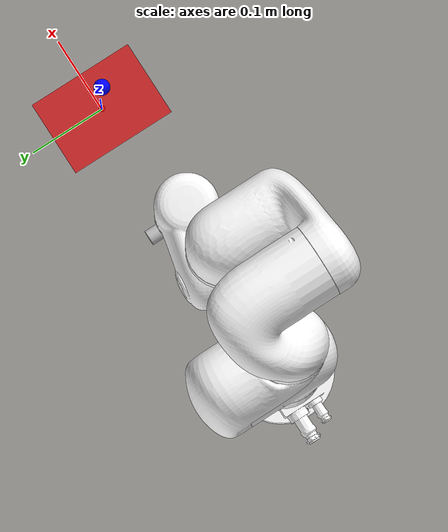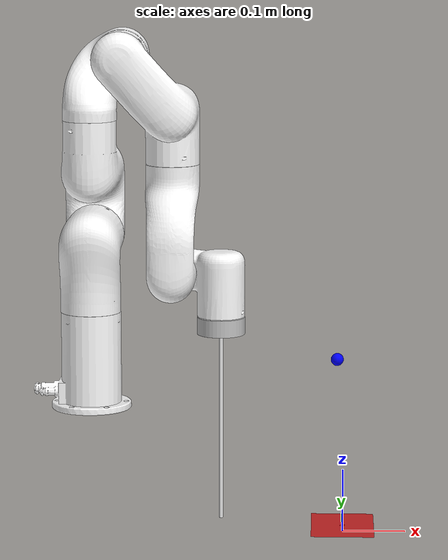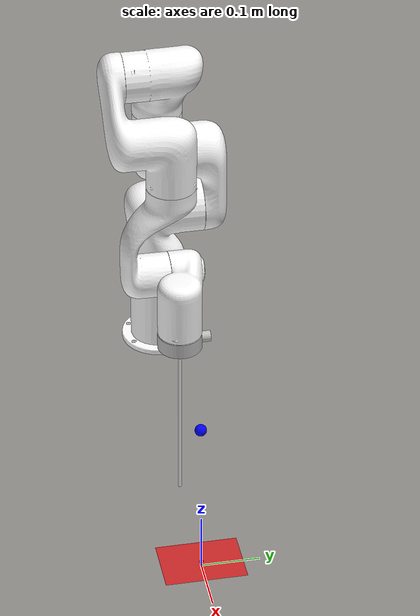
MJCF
<mujoco model="main">

  <compiler angle="radian" autolimits="true" strippath="false" />

  <include file="placenta/placenta_gen.xml"/>

  <include file="ufactory_xarm7/xarm7_tool.xml"/>

  <include file="other/floor.xml"/>
  <include file="other/ee_marker.xml"/>
  <include file="other/rcm_marker.xml"/>

</mujoco>

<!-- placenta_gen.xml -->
<mujoco model="placenta_generated">
    <asset>
        <texture name="generated" type="2d" file="placenta/assets/plac1344.png"/>
        <material name="textured_material" texture="generated"/>
    </asset>

    <worldbody>

        <body name="placenta_gen" pos="0 0 0.01" euler="0 0 -1.5708">
            <inertial pos="0 0 0" mass="0.1" diaginertia="0.0001 0.0001 0.0001"/>
            <geom name="textured_geom" type="plane"  size="0.07 0.05 0.1" material="textured_material" />
        </body>

    </worldbody>

</mujoco>

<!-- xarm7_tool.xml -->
<mujoco model="xarm7 tool">

  <option integrator="implicitfast"/>

  <asset>
    <material name="white" rgba="1 1 1 1"/>
    <material name="gray" rgba="0.753 0.753 0.753 1"/>

    <mesh file="ufactory_xarm7/assets/link_base.stl"/>
    <mesh file="ufactory_xarm7/assets/link1.stl"/>
    <mesh file="ufactory_xarm7/assets/link2.stl"/>
    <mesh file="ufactory_xarm7/assets/link3.stl"/>
    <mesh file="ufactory_xarm7/assets/link4.stl"/>
    <mesh file="ufactory_xarm7/assets/link5.stl"/>
    <mesh file="ufactory_xarm7/assets/link6.stl"/>
    <mesh file="ufactory_xarm7/assets/link7.stl"/>
    <mesh file="ufactory_xarm7/assets/end_tool.stl"/>
  </asset>

  <default>
    <default class="xarm7">
      <geom type="mesh" material="white"/>
      <joint axis="0 0 1" range="-6.28319 6.28319" frictionloss="1"/>
      <general biastype="affine" ctrlrange="-6.28319 6.28319"/>
      <default class="size1">
        <joint damping="10"/>
        <general gainprm="1500" biasprm="0 -1500 -150" forcerange="-50 50"/>
      </default>
      <default class="size2">
        <joint damping="5"/>
        <general gainprm="1000" biasprm="0 -1000 -100" forcerange="-30 30"/>
      </default>
      <default class="size3">
        <joint damping="2"/>
        <general gainprm="800" biasprm="0 -800 -80" forcerange="-20 20"/>
      </default>
      <site size="0.001" rgba="1 0 0 1" group="4"/>
    </default>
  </default>

  <worldbody>
    <body name="link_base" pos="-0.4 0 0.2" childclass="xarm7">
      <inertial pos="-0.021131 -0.0016302 0.056488" quat="0.696843 0.20176 0.10388 0.680376" mass="0.88556"
        diaginertia="0.00382023 0.00335282 0.00167725"/>
      <geom mesh="link_base"/>
      <body name="link1" pos="0 0 0.267">
        <inertial pos="-0.0002 0.02905 -0.01233" quat="0.978953 -0.202769 -0.00441617 -0.0227264" mass="2.382"
          diaginertia="0.00569127 0.00533384 0.00293865"/>
        <joint name="joint1" class="size1"/>
        <geom mesh="link1"/>
        <body name="link2" quat="1 -1 0 0">
          <inertial pos="0.00022 -0.12856 0.01735" quat="0.50198 0.86483 -0.00778841 0.00483285" mass="1.869"
            diaginertia="0.00959898 0.00937717 0.00201315"/>
          <joint name="joint2" range="-2.059 2.0944" class="size1"/>
          <geom mesh="link2"/>
          <body name="link3" pos="0 -0.293 0" quat="1 1 0 0">
            <inertial pos="0.0466 -0.02463 -0.00768" quat="0.913819 0.289775 0.281481 -0.0416455" mass="1.6383"
              diaginertia="0.00351721 0.00294089 0.00195868"/>
            <joint name="joint3" class="size2"/>
            <geom mesh="link3"/>
            <body name="link4" pos="0.0525 0 0" quat="1 1 0 0">
              <inertial pos="0.07047 -0.11575 0.012" quat="0.422108 0.852026 -0.126025 0.282832" mass="1.7269"
                diaginertia="0.00657137 0.00647948 0.00186763"/>
              <joint name="joint4" range="-0.19198 3.927" class="size2"/>
              <geom mesh="link4"/>
              <body name="link5" pos="0.0775 -0.3425 0" quat="1 1 0 0">
                <inertial pos="-0.00032 0.01604 -0.026" quat="0.999311 -0.0304457 0.000577067 0.0212082" mass="1.3203"
                  diaginertia="0.00534729 0.00499076 0.0013489"/>
                <joint name="joint5" class="size2"/>
                <geom mesh="link5"/>
                <body name="link6" quat="1 1 0 0">
                  <inertial pos="0.06469 0.03278 0.02141" quat="-0.217672 0.772419 0.16258 0.574069" mass="1.325"
                    diaginertia="0.00245421 0.00221646 0.00107273"/>
                  <joint name="joint6" range="-1.69297 3.14159" class="size3"/>
                  <geom mesh="link6"/>
                  <body name="link7" pos="0.076 0.097 0" quat="1 -1 0 0">
                    <inertial pos="0 -0.00677 -0.01098" quat="0.487612 0.512088 -0.512088 0.487612" mass="0.17"
                      diaginertia="0.000132176 9.3e-05 5.85236e-05"/>
                    <joint name="joint7" class="size3"/>
                    <geom material="gray" mesh="end_tool"/>
                    <site name="attachment_site"/>
                    <body name="tool" pos="0 0 0.15" quat="1 0 0 0">
                      <geom type="cylinder" size="0.003 0.15" rgba="0.9 .9 0.9 1" mass="0.1"/>
                      <camera name="eye" mode="fixed" pos="0 0 0.15" euler='0 3.141592654 1.570796327' fovy="10"/>
                      <light diffuse="1 1 1" specular="1 1 1" pos="0 0 0.15" dir="0 0 1" />
                    </body>
                  </body>
                </body>
              </body>
            </body>
          </body>
        </body>
      </body>
    </body>
  </worldbody>

  <actuator>
    <general name="act1" joint="joint1" class="size1"/>
    <general name="act2" joint="joint2" class="size1" ctrlrange="-2.059 2.0944"/>
    <general name="act3" joint="joint3" class="size2"/>
    <general name="act4" joint="joint4" class="size2" ctrlrange="-0.19198 3.927"/>
    <general name="act5" joint="joint5" class="size2"/>
    <general name="act6" joint="joint6" class="size3" ctrlrange="-1.69297 3.14159"/>
    <general name="act7" joint="joint7" class="size3"/>
  </actuator>

  <keyframe>
    <key name="home" qpos="0 -.247 0 .909 0 1.15644 0" ctrl="0 -.247 0 .909 0 1.15644 0"/>
  </keyframe>
</mujoco>

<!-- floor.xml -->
<mujoco model="floor">

  <asset>
    <texture type="skybox" builtin="gradient" rgb1="0.3 0.5 0.7" rgb2="0 0 0" width="512" height="3072"/>
    <texture type="2d" name="groundplane" builtin="checker" mark="edge" rgb1="0.2 0.3 0.4" rgb2="0.1 0.2 0.3"
      markrgb="0.8 0.8 0.8" width="300" height="300"/>
    <material name="groundplane" texture="groundplane" texuniform="true" texrepeat="5 5" reflectance="0.0"/>
  </asset>

  <worldbody>
    <geom name="floor" size="0 0 0.05" type="plane" material="groundplane"/>
  </worldbody>

</mujoco>

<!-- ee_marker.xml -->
<mujoco model="ee_marker">

    <worldbody>

    <body name="ee_marker" pos="0 0 0">
      <inertial pos="0 0 0" mass="0.1" diaginertia="0.0001 0.0001 0.0001"/>
      <geom type="sphere" size="0.01" rgba="1 0 0 1" contype="0" conaffinity="0"/>
    </body>

    </worldbody>

</mujoco>

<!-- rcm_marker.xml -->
<mujoco model="rcm_marker">

    <worldbody>

    <body name="rcm" pos="-0.01 0 0.28">
      <inertial pos="0 0 0" mass="0.1" diaginertia="0.0001 0.0001 0.0001"/>
      <geom type="sphere" size="0.01" rgba="0 0 1 1" contype="0" conaffinity="0"/>
    </body>

    </worldbody>

</mujoco>
